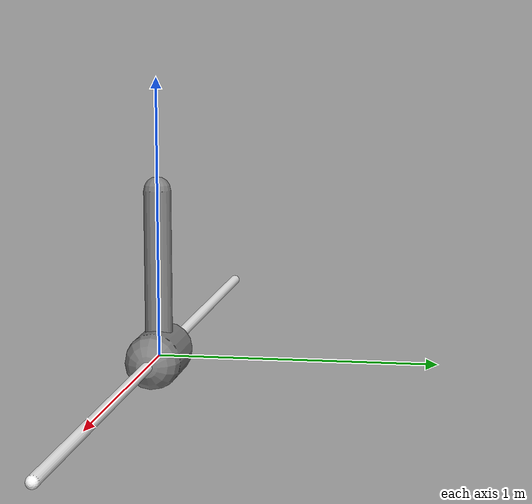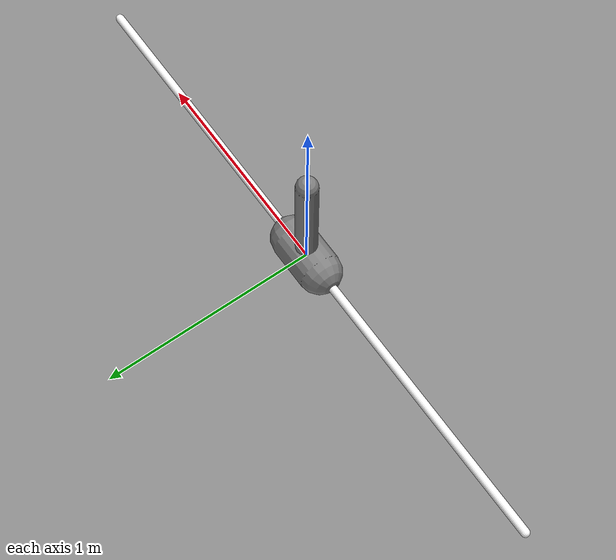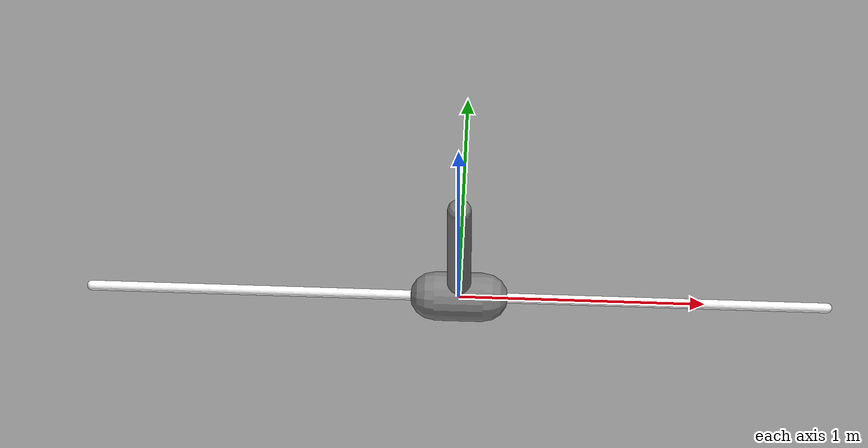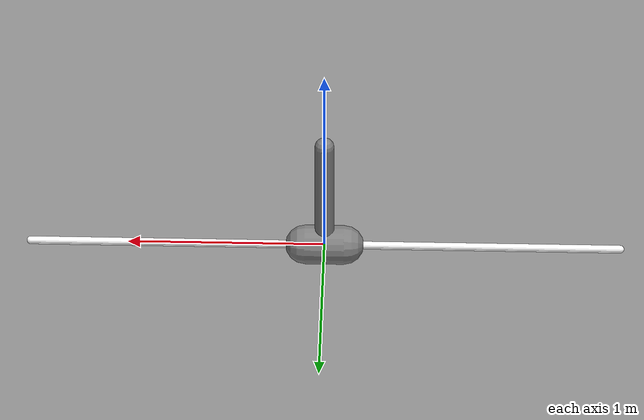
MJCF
<mujoco model="cart pole">
    <compiler inertiafromgeom="true"/> <!-- Angle units are radians. -->

    <option iterations="1" ls_iterations="5">
        <flag eulerdamp="disable"/>
    </option>

    <default>
        <joint armature="0" damping="1"/>
        <geom contype="0" conaffinity="0" friction="1 0.1 0.1"/> <!-- No contact. -->
    </default>

    <worldbody>
        <light diffuse=".5 .5 .5" pos="0 0 3" dir="0 0 -1"/>
        <!-- The "rail" geometry is only visual. -->
        <geom name="rail" type="capsule"  size="0.02 1.5" pos="0 0 0" quat="1 0 1 0" rgba="1 1 1 1"/>
        <body name="cart" pos="0 0 0">
            <!-- The slider joint connects the cart to the world. -->
            <joint name="slider" type="slide" axis="1 0 0" pos="0 0 0" limited="true" range="-1.5 1.5"/>
            <geom name="cart_geom" pos="0 0 0" quat="1 0 1 0" size="0.1 0.1" type="capsule"/>
            <body name="pole" pos="0 0 0">
                <joint name="hinge" type="hinge" axis="0 1 0" pos="0 0 0"/>
                <geom name="pole_geom" type="capsule" size="0.049 0.3"  fromto="0 0 0 0.001 0 0.6"/>
            </body>
        </body>
    </worldbody>

    <actuator>
        <motor ctrllimited="true" ctrlrange="-3 3" gear="100" joint="slider" name="slide"/>
    </actuator>

</mujoco>
